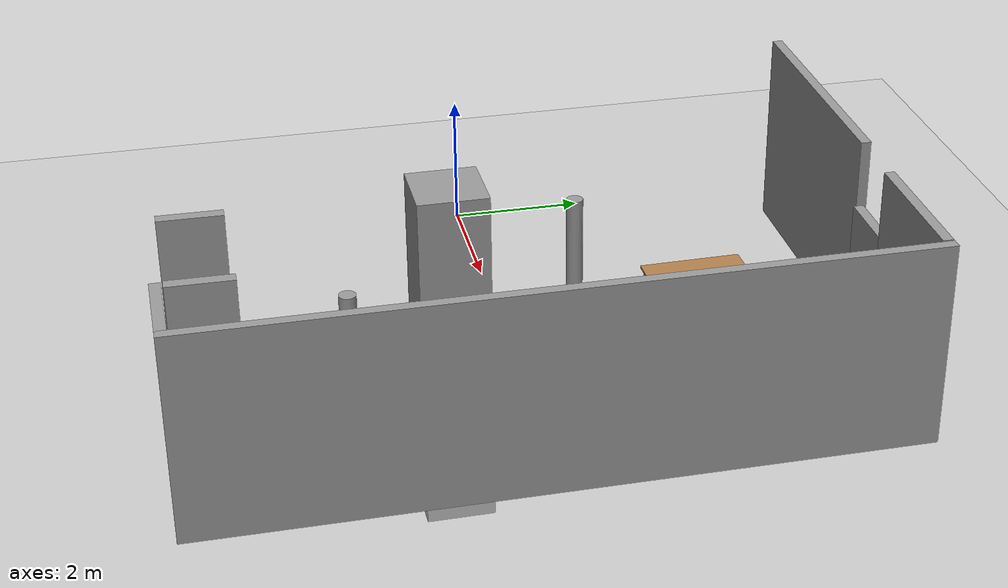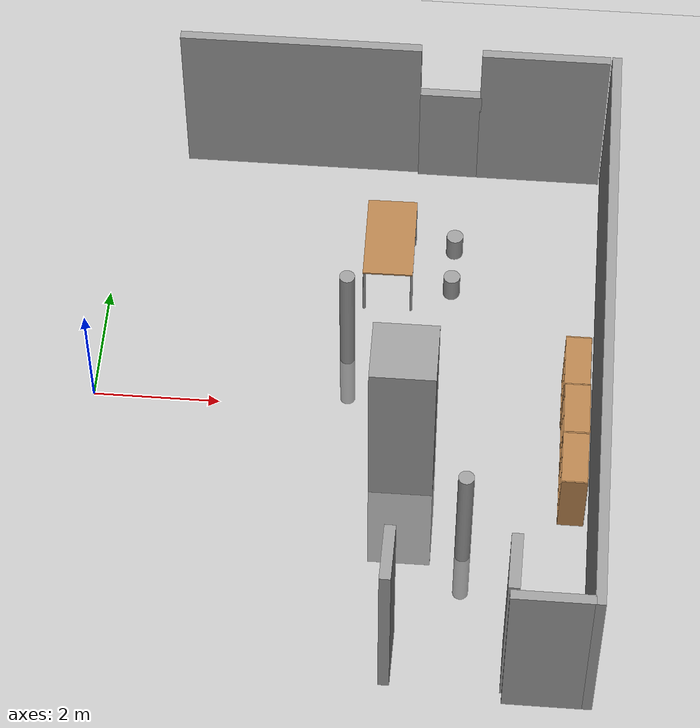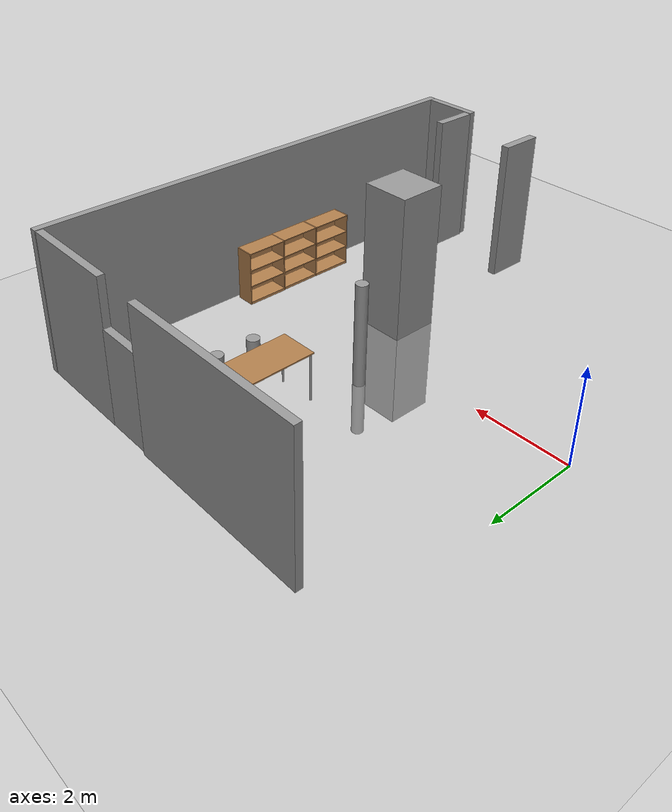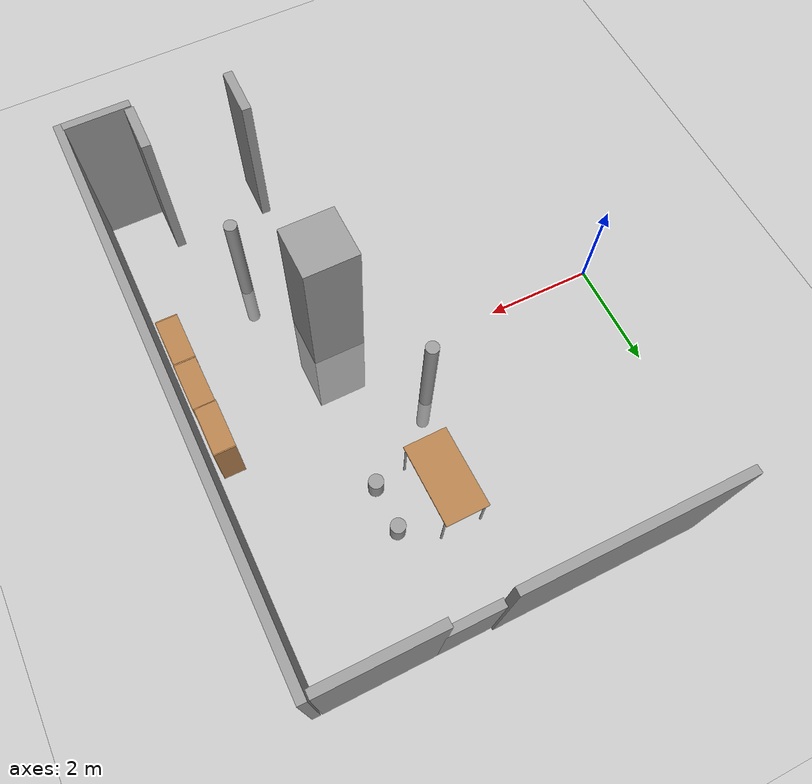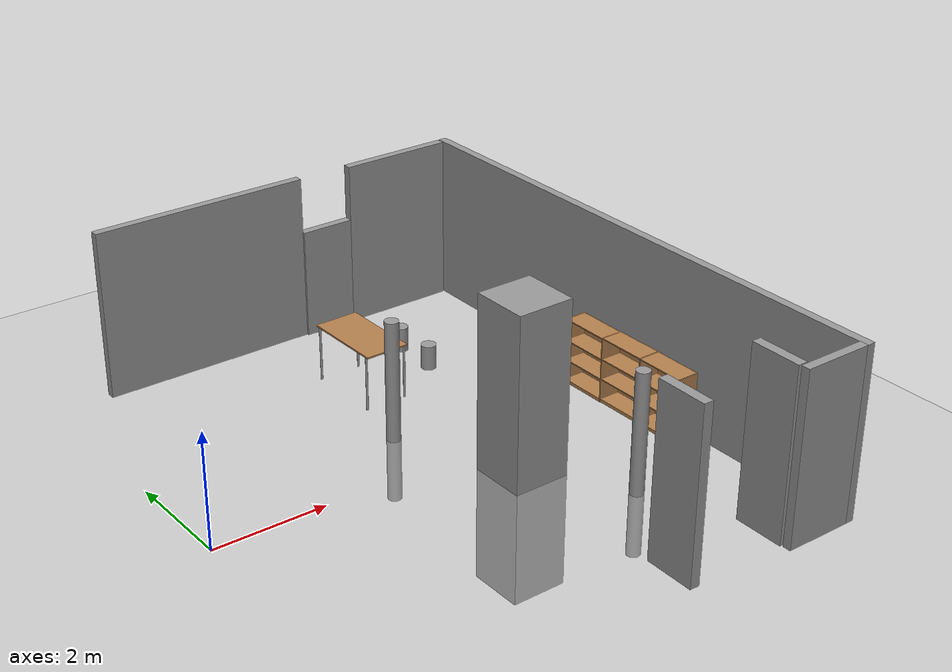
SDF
<sdf version="1.6">
 <world name="default">
  <model name="ground_plane">
   <static>1</static>
   <link name="link">
    <collision name="collision">
     <geometry><plane><normal>0 0 1</normal><size>100 100</size></plane></geometry>
     <surface><friction><ode><mu>100</mu><mu2>50</mu2></ode></friction></surface>
    </collision>
    <visual name="visual">
     <cast_shadows>0</cast_shadows>
     <geometry><plane><normal>0 0 1</normal><size>100 100</size></plane></geometry>
     <material>
      <script><uri>file://media/materials/scripts/gazebo.material</uri><name>Gazebo/Grey</name></script>
     </material>
    </visual>
   </link>
  </model>
  <model name="5">
   <link name="Door_2">
    <pose>5 -4.45535 0 0 -0 1.55702</pose>
    <visual name="Door_2_Visual">
     <pose>0 0 1.5 0 -0 0</pose>
     <geometry><box><size>0.9 0.17 3</size></box></geometry>
     <material>
      <script><uri>file://media/materials/scripts/gazebo.material</uri><name>Gazebo/Grey</name></script>
     </material>
    </visual>
    <collision name="Door_2_Collision">
     <pose>0 0 1.5 0 -0 0</pose>
     <geometry><box><size>0.9 0.17 3</size></box></geometry>
     <surface>
      <friction>
       <ode><mu>1</mu><mu2>1</mu2><fdir1>0 0 0</fdir1><slip1>0</slip1><slip2>0</slip2></ode>
       <torsional>
        <coefficient>1</coefficient>
        <patch_radius>0</patch_radius>
        <surface_radius>0</surface_radius>
        <use_patch_radius>1</use_patch_radius>
        <ode><slip>0</slip></ode>
       </torsional>
      </friction>
      <bounce><restitution_coefficient>0</restitution_coefficient><threshold>1e+06</threshold></bounce>
      <contact>
       <collide_without_contact>0</collide_without_contact>
       <collide_without_contact_bitmask>1</collide_without_contact_bitmask>
       <collide_bitmask>1</collide_bitmask>
       <ode>
        <soft_cfm>0</soft_cfm>
        <soft_erp>0.2</soft_erp>
        <kp>1e+13</kp>
        <kd>1</kd>
        <max_vel>0.01</max_vel>
        <min_depth>0</min_depth>
       </ode>
       <bullet>
        <split_impulse>1</split_impulse>
        <split_impulse_penetration_threshold>-0.01</split_impulse_penetration_threshold>
        <soft_cfm>0</soft_cfm>
        <soft_erp>0.2</soft_erp>
        <kp>1e+13</kp>
        <kd>1</kd>
       </bullet>
      </contact>
     </surface>
    </collision>
   </link>
   <link name="Door_3">
    <pose>6.8 -4.45535 0 0 0 -1.58271</pose>
    <visual name="Door_3_Visual">
     <pose>0 0 1.5 0 -0 0</pose>
     <geometry><box><size>0.9 0.17 3</size></box></geometry>
     <material>
      <script><uri>file://media/materials/scripts/gazebo.material</uri><name>Gazebo/Grey</name></script>
     </material>
    </visual>
    <collision name="Door_3_Collision">
     <pose>0 0 1.5 0 -0 0</pose>
     <geometry><box><size>0.9 0.17 3</size></box></geometry>
     <surface>
      <friction>
       <ode><mu>1</mu><mu2>1</mu2><fdir1>0 0 0</fdir1><slip1>0</slip1><slip2>0</slip2></ode>
       <torsional>
        <coefficient>1</coefficient>
        <patch_radius>0</patch_radius>
        <surface_radius>0</surface_radius>
        <use_patch_radius>1</use_patch_radius>
        <ode><slip>0</slip></ode>
       </torsional>
      </friction>
      <bounce><restitution_coefficient>0</restitution_coefficient><threshold>1e+06</threshold></bounce>
      <contact>
       <collide_without_contact>0</collide_without_contact>
       <collide_without_contact_bitmask>1</collide_without_contact_bitmask>
       <collide_bitmask>1</collide_bitmask>
       <ode>
        <soft_cfm>0</soft_cfm>
        <soft_erp>0.2</soft_erp>
        <kp>1e+13</kp>
        <kd>1</kd>
        <max_vel>0.01</max_vel>
        <min_depth>0</min_depth>
       </ode>
       <bullet>
        <split_impulse>1</split_impulse>
        <split_impulse_penetration_threshold>-0.01</split_impulse_penetration_threshold>
        <soft_cfm>0</soft_cfm>
        <soft_erp>0.2</soft_erp>
        <kp>1e+13</kp>
        <kd>1</kd>
       </bullet>
      </contact>
     </surface>
    </collision>
   </link>
   <link name="Wall_10">
    <pose>7.34 -5.00535 0 0 -0 0</pose>
    <visual name="Wall_10_Visual">
     <pose>0 0 1.5 0 -0 0</pose>
     <geometry><box><size>1.2 0.15 3</size></box></geometry>
     <material>
      <script><uri>file://media/materials/scripts/gazebo.material</uri><name>Gazebo/Grey</name></script>
      <ambient>1 1 1 1</ambient>
     </material>
     <meta><layer>0</layer></meta>
    </visual>
    <collision name="Wall_10_Collision">
     <pose>0 0 1.5 0 -0 0</pose>
     <geometry><box><size>1.2 0.15 3</size></box></geometry>
     <surface>
      <friction>
       <ode><mu>1</mu><mu2>1</mu2><fdir1>0 0 0</fdir1><slip1>0</slip1><slip2>0</slip2></ode>
       <torsional>
        <coefficient>1</coefficient>
        <patch_radius>0</patch_radius>
        <surface_radius>0</surface_radius>
        <use_patch_radius>1</use_patch_radius>
        <ode><slip>0</slip></ode>
       </torsional>
      </friction>
      <bounce><restitution_coefficient>0</restitution_coefficient><threshold>1e+06</threshold></bounce>
      <contact>
       <collide_without_contact>0</collide_without_contact>
       <collide_without_contact_bitmask>1</collide_without_contact_bitmask>
       <collide_bitmask>1</collide_bitmask>
       <ode>
        <soft_cfm>0</soft_cfm>
        <soft_erp>0.2</soft_erp>
        <kp>1e+13</kp>
        <kd>1</kd>
        <max_vel>0.01</max_vel>
        <min_depth>0</min_depth>
       </ode>
       <bullet>
        <split_impulse>1</split_impulse>
        <split_impulse_penetration_threshold>-0.01</split_impulse_penetration_threshold>
        <soft_cfm>0</soft_cfm>
        <soft_erp>0.2</soft_erp>
        <kp>1e+13</kp>
        <kd>1</kd>
       </bullet>
      </contact>
     </surface>
    </collision>
   </link>
   <link name="Wall_12">
    <pose>8 -0.005352 0 0 -0 1.5708</pose>
    <visual name="Wall_12_Visual">
     <pose>0 0 1.5 0 -0 0</pose>
     <geometry><box><size>10.15 0.15 3</size></box></geometry>
     <material>
      <script><uri>file://media/materials/scripts/gazebo.material</uri><name>Gazebo/Grey</name></script>
      <ambient>1 1 1 1</ambient>
     </material>
     <meta><layer>0</layer></meta>
    </visual>
    <collision name="Wall_12_Collision">
     <pose>0 0 1.5 0 -0 0</pose>
     <geometry><box><size>10.15 0.15 3</size></box></geometry>
     <surface>
      <friction>
       <ode><mu>1</mu><mu2>1</mu2><fdir1>0 0 0</fdir1><slip1>0</slip1><slip2>0</slip2></ode>
       <torsional>
        <coefficient>1</coefficient>
        <patch_radius>0</patch_radius>
        <surface_radius>0</surface_radius>
        <use_patch_radius>1</use_patch_radius>
        <ode><slip>0</slip></ode>
       </torsional>
      </friction>
      <bounce><restitution_coefficient>0</restitution_coefficient><threshold>1e+06</threshold></bounce>
      <contact>
       <collide_without_contact>0</collide_without_contact>
       <collide_without_contact_bitmask>1</collide_without_contact_bitmask>
       <collide_bitmask>1</collide_bitmask>
       <ode>
        <soft_cfm>0</soft_cfm>
        <soft_erp>0.2</soft_erp>
        <kp>1e+13</kp>
        <kd>1</kd>
        <max_vel>0.01</max_vel>
        <min_depth>0</min_depth>
       </ode>
       <bullet>
        <split_impulse>1</split_impulse>
        <split_impulse_penetration_threshold>-0.01</split_impulse_penetration_threshold>
        <soft_cfm>0</soft_cfm>
        <soft_erp>0.2</soft_erp>
        <kp>1e+13</kp>
        <kd>1</kd>
       </bullet>
      </contact>
     </surface>
    </collision>
   </link>
   <link name="Wall_22">
    <pose>2.93225 5.03398 0 0 -0 0.000503</pose>
    <inertial>
     <inertia><ixx>0</ixx><ixy>0</ixy><ixz>0</ixz><iyy>0</iyy><iyz>0</iyz><izz>0</izz></inertia>
     <mass>0</mass>
    </inertial>
    <visual name="Wall_22_Visual">
     <pose>0 0 1.5 0 -0 0</pose>
     <geometry><box><size>3.89162 0.15 3</size></box></geometry>
     <material>
      <script><uri>file://media/materials/scripts/gazebo.material</uri><name>Gazebo/Grey</name></script>
      <ambient>1 1 1 1</ambient>
     </material>
     <meta><layer>0</layer></meta>
    </visual>
    <collision name="Wall_22_Collision">
     <pose>0 0 1.5 0 -0 0</pose>
     <geometry><box><size>3.89162 0.15 3</size></box></geometry>
     <surface>
      <friction>
       <ode><mu>1</mu><mu2>1</mu2><fdir1>0 0 0</fdir1><slip1>0</slip1><slip2>0</slip2></ode>
       <torsional>
        <coefficient>1</coefficient>
        <patch_radius>0</patch_radius>
        <surface_radius>0</surface_radius>
        <use_patch_radius>1</use_patch_radius>
        <ode><slip>0</slip></ode>
       </torsional>
      </friction>
      <bounce><restitution_coefficient>0</restitution_coefficient><threshold>1e+06</threshold></bounce>
      <contact>
       <collide_without_contact>0</collide_without_contact>
       <collide_without_contact_bitmask>1</collide_without_contact_bitmask>
       <collide_bitmask>1</collide_bitmask>
       <ode>
        <soft_cfm>0</soft_cfm>
        <soft_erp>0.2</soft_erp>
        <kp>1e+13</kp>
        <kd>1</kd>
        <max_vel>0.01</max_vel>
        <min_depth>0</min_depth>
       </ode>
       <bullet>
        <split_impulse>1</split_impulse>
        <split_impulse_penetration_threshold>-0.01</split_impulse_penetration_threshold>
        <soft_cfm>0</soft_cfm>
        <soft_erp>0.2</soft_erp>
        <kp>1e+13</kp>
        <kd>1</kd>
       </bullet>
      </contact>
     </surface>
    </collision>
   </link>
   <link name="Wall_24">
    <pose>5.375 4.99465 0 0 -0 0</pose>
    <inertial>
     <inertia><ixx>0</ixx><ixy>0</ixy><ixz>0</ixz><iyy>0</iyy><iyz>0</iyz><izz>0</izz></inertia>
     <mass>0</mass>
    </inertial>
    <visual name="Wall_24_Visual_0">
     <pose>0 0 1 0 -0 0</pose>
     <geometry><box><size>1.00475 0.15 2</size></box></geometry>
     <material>
      <script><uri>file://media/materials/scripts/gazebo.material</uri><name>Gazebo/Grey</name></script>
      <ambient>1 1 1 1</ambient>
     </material>
     <meta><layer>0</layer></meta>
    </visual>
    <collision name="Wall_24_Collision_0">
     <pose>0 0 1 0 -0 0</pose>
     <geometry><box><size>1.00475 0.15 2</size></box></geometry>
     <surface>
      <friction>
       <ode><mu>1</mu><mu2>1</mu2><fdir1>0 0 0</fdir1><slip1>0</slip1><slip2>0</slip2></ode>
       <torsional>
        <coefficient>1</coefficient>
        <patch_radius>0</patch_radius>
        <surface_radius>0</surface_radius>
        <use_patch_radius>1</use_patch_radius>
        <ode><slip>0</slip></ode>
       </torsional>
      </friction>
      <bounce><restitution_coefficient>0</restitution_coefficient><threshold>1e+06</threshold></bounce>
      <contact>
       <collide_without_contact>0</collide_without_contact>
       <collide_without_contact_bitmask>1</collide_without_contact_bitmask>
       <collide_bitmask>1</collide_bitmask>
       <ode>
        <soft_cfm>0</soft_cfm>
        <soft_erp>0.2</soft_erp>
        <kp>1e+13</kp>
        <kd>1</kd>
        <max_vel>0.01</max_vel>
        <min_depth>0</min_depth>
       </ode>
       <bullet>
        <split_impulse>1</split_impulse>
        <split_impulse_penetration_threshold>-0.01</split_impulse_penetration_threshold>
        <soft_cfm>0</soft_cfm>
        <soft_erp>0.2</soft_erp>
        <kp>1e+13</kp>
        <kd>1</kd>
       </bullet>
      </contact>
     </surface>
    </collision>
   </link>
   <link name="Wall_26">
    <pose>6.875 4.99465 0 0 -0 0</pose>
    <inertial>
     <inertia><ixx>0</ixx><ixy>0</ixy><ixz>0</ixz><iyy>0</iyy><iyz>0</iyz><izz>0</izz></inertia>
     <mass>0</mass>
    </inertial>
    <visual name="Wall_26_Visual">
     <pose>0 0 1.5 0 -0 0</pose>
     <geometry><box><size>2.0482 0.15 3</size></box></geometry>
     <material>
      <script><uri>file://media/materials/scripts/gazebo.material</uri><name>Gazebo/Grey</name></script>
      <ambient>1 1 1 1</ambient>
     </material>
     <meta><layer>0</layer></meta>
    </visual>
    <collision name="Wall_26_Collision">
     <pose>0 0 1.5 0 -0 0</pose>
     <geometry><box><size>2.0482 0.15 3</size></box></geometry>
     <surface>
      <friction>
       <ode><mu>1</mu><mu2>1</mu2><fdir1>0 0 0</fdir1><slip1>0</slip1><slip2>0</slip2></ode>
       <torsional>
        <coefficient>1</coefficient>
        <patch_radius>0</patch_radius>
        <surface_radius>0</surface_radius>
        <use_patch_radius>1</use_patch_radius>
        <ode><slip>0</slip></ode>
       </torsional>
      </friction>
      <bounce><restitution_coefficient>0</restitution_coefficient><threshold>1e+06</threshold></bounce>
      <contact>
       <collide_without_contact>0</collide_without_contact>
       <collide_without_contact_bitmask>1</collide_without_contact_bitmask>
       <collide_bitmask>1</collide_bitmask>
       <ode>
        <soft_cfm>0</soft_cfm>
        <soft_erp>0.2</soft_erp>
        <kp>1e+13</kp>
        <kd>1</kd>
        <max_vel>0.01</max_vel>
        <min_depth>0</min_depth>
       </ode>
       <bullet>
        <split_impulse>1</split_impulse>
        <split_impulse_penetration_threshold>-0.01</split_impulse_penetration_threshold>
        <soft_cfm>0</soft_cfm>
        <soft_erp>0.2</soft_erp>
        <kp>1e+13</kp>
        <kd>1</kd>
       </bullet>
      </contact>
     </surface>
    </collision>
   </link>
   <link name="link_10">
    <inertial>
     <mass>0.189527</mass>
     <inertia>
      <ixx>0.168646</ixx>
      <ixy>0</ixy>
      <ixz>0</ixz>
      <iyy>0.168646</iyy>
      <iyz>0</iyz>
      <izz>0.00137469</izz>
     </inertia>
    </inertial>
    <pose>3.99203 1.00755 0.5 0 -0 1.57569</pose>
    <visual name="visual">
     <geometry><cylinder><radius>0.120443</radius><length>3.26104</length></cylinder></geometry>
     <material>
      <lighting>1</lighting>
      <script><uri>file://media/materials/scripts/gazebo.material</uri><name>Gazebo/Grey</name></script>
     </material>
    </visual>
    <collision name="collision">
     <geometry><cylinder><radius>0.120443</radius><length>3.26104</length></cylinder></geometry>
     <surface>
      <friction>
       <ode><mu>1</mu><mu2>1</mu2><fdir1>0 0 0</fdir1><slip1>0</slip1><slip2>0</slip2></ode>
       <torsional>
        <coefficient>1</coefficient>
        <patch_radius>0</patch_radius>
        <surface_radius>0</surface_radius>
        <use_patch_radius>1</use_patch_radius>
        <ode><slip>0</slip></ode>
       </torsional>
      </friction>
      <bounce><restitution_coefficient>0</restitution_coefficient><threshold>1e+06</threshold></bounce>
      <contact>
       <collide_without_contact>0</collide_without_contact>
       <collide_without_contact_bitmask>1</collide_without_contact_bitmask>
       <collide_bitmask>1</collide_bitmask>
       <ode>
        <soft_cfm>0</soft_cfm>
        <soft_erp>0.2</soft_erp>
        <kp>1e+13</kp>
        <kd>1</kd>
        <max_vel>0.01</max_vel>
        <min_depth>0</min_depth>
       </ode>
       <bullet>
        <split_impulse>1</split_impulse>
        <split_impulse_penetration_threshold>-0.01</split_impulse_penetration_threshold>
        <soft_cfm>0</soft_cfm>
        <soft_erp>0.2</soft_erp>
        <kp>1e+13</kp>
        <kd>1</kd>
       </bullet>
      </contact>
     </surface>
    </collision>
   </link>
   <link name="link_10_clone">
    <inertial>
     <mass>0.189527</mass>
     <inertia>
      <ixx>0.168646</ixx>
      <ixy>0</ixy>
      <ixz>0</ixz>
      <iyy>0.168646</iyy>
      <iyz>0</iyz>
      <izz>0.00137469</izz>
     </inertia>
    </inertial>
    <pose>6.03211 -2.55608 0.5 0 0 -3.13181</pose>
    <visual name="visual">
     <geometry><cylinder><radius>0.120443</radius><length>3.26104</length></cylinder></geometry>
     <material>
      <lighting>1</lighting>
      <script><uri>file://media/materials/scripts/gazebo.material</uri><name>Gazebo/Grey</name></script>
      <shader type="pixel"/>
     </material>
    </visual>
    <collision name="collision">
     <geometry><cylinder><radius>0.120443</radius><length>3.26104</length></cylinder></geometry>
     <surface>
      <friction>
       <ode><mu>1</mu><mu2>1</mu2><fdir1>0 0 0</fdir1><slip1>0</slip1><slip2>0</slip2></ode>
       <torsional>
        <coefficient>1</coefficient>
        <patch_radius>0</patch_radius>
        <surface_radius>0</surface_radius>
        <use_patch_radius>1</use_patch_radius>
        <ode><slip>0</slip></ode>
       </torsional>
      </friction>
      <bounce><restitution_coefficient>0</restitution_coefficient><threshold>1e+06</threshold></bounce>
      <contact>
       <collide_without_contact>0</collide_without_contact>
       <collide_without_contact_bitmask>1</collide_without_contact_bitmask>
       <collide_bitmask>1</collide_bitmask>
       <ode>
        <soft_cfm>0</soft_cfm>
        <soft_erp>0.2</soft_erp>
        <kp>1e+13</kp>
        <kd>1</kd>
        <max_vel>0.01</max_vel>
        <min_depth>0</min_depth>
       </ode>
       <bullet>
        <split_impulse>1</split_impulse>
        <split_impulse_penetration_threshold>-0.01</split_impulse_penetration_threshold>
        <soft_cfm>0</soft_cfm>
        <soft_erp>0.2</soft_erp>
        <kp>1e+13</kp>
        <kd>1</kd>
       </bullet>
      </contact>
     </surface>
    </collision>
   </link>
   <link name="link_13_clone_2">
    <inertial>
     <mass>0.0313183</mass>
     <inertia>
      <ixx>0.000638939</ixx>
      <ixy>0</ixy>
      <ixz>0</ixz>
      <iyy>0.000638939</iyy>
      <iyz>0</iyz>
      <izz>0.0002788</izz>
     </inertia>
    </inertial>
    <pose>5.58438 3.04761 0.5 0 0 -3.13181</pose>
    <visual name="visual">
     <geometry><cylinder><radius>0.133433</radius><length>0.437499</length></cylinder></geometry>
     <material>
      <lighting>1</lighting>
      <script><uri>file://media/materials/scripts/gazebo.material</uri><name>Gazebo/Grey</name></script>
      <shader type="pixel"/>
     </material>
    </visual>
    <collision name="collision">
     <geometry><cylinder><radius>0.133433</radius><length>0.437499</length></cylinder></geometry>
     <surface>
      <friction>
       <ode><mu>1</mu><mu2>1</mu2><fdir1>0 0 0</fdir1><slip1>0</slip1><slip2>0</slip2></ode>
       <torsional>
        <coefficient>1</coefficient>
        <patch_radius>0</patch_radius>
        <surface_radius>0</surface_radius>
        <use_patch_radius>1</use_patch_radius>
        <ode><slip>0</slip></ode>
       </torsional>
      </friction>
      <bounce><restitution_coefficient>0</restitution_coefficient><threshold>1e+06</threshold></bounce>
      <contact>
       <collide_without_contact>0</collide_without_contact>
       <collide_without_contact_bitmask>1</collide_without_contact_bitmask>
       <collide_bitmask>1</collide_bitmask>
       <ode>
        <soft_cfm>0</soft_cfm>
        <soft_erp>0.2</soft_erp>
        <kp>1e+13</kp>
        <kd>1</kd>
        <max_vel>0.01</max_vel>
        <min_depth>0</min_depth>
       </ode>
       <bullet>
        <split_impulse>1</split_impulse>
        <split_impulse_penetration_threshold>-0.01</split_impulse_penetration_threshold>
        <soft_cfm>0</soft_cfm>
        <soft_erp>0.2</soft_erp>
        <kp>1e+13</kp>
        <kd>1</kd>
       </bullet>
      </contact>
     </surface>
    </collision>
   </link>
   <link name="link_13_clone_3">
    <inertial>
     <mass>0.0313183</mass>
     <inertia>
      <ixx>0.000638939</ixx>
      <ixy>0</ixy>
      <ixz>0</ixz>
      <iyy>0.000638939</iyy>
      <iyz>0</iyz>
      <izz>0.0002788</izz>
     </inertia>
    </inertial>
    <pose>5.58067 2.21897 0.5 0 0 -3.13181</pose>
    <visual name="visual">
     <geometry><cylinder><radius>0.133433</radius><length>0.437499</length></cylinder></geometry>
     <material>
      <lighting>1</lighting>
      <script><uri>file://media/materials/scripts/gazebo.material</uri><name>Gazebo/Grey</name></script>
      <shader type="pixel"/>
     </material>
    </visual>
    <collision name="collision">
     <geometry><cylinder><radius>0.133433</radius><length>0.437499</length></cylinder></geometry>
     <surface>
      <friction>
       <ode><mu>1</mu><mu2>1</mu2><fdir1>0 0 0</fdir1><slip1>0</slip1><slip2>0</slip2></ode>
       <torsional>
        <coefficient>1</coefficient>
        <patch_radius>0</patch_radius>
        <surface_radius>0</surface_radius>
        <use_patch_radius>1</use_patch_radius>
        <ode><slip>0</slip></ode>
       </torsional>
      </friction>
      <bounce><restitution_coefficient>0</restitution_coefficient><threshold>1e+06</threshold></bounce>
      <contact>
       <collide_without_contact>0</collide_without_contact>
       <collide_without_contact_bitmask>1</collide_without_contact_bitmask>
       <collide_bitmask>1</collide_bitmask>
       <ode>
        <soft_cfm>0</soft_cfm>
        <soft_erp>0.2</soft_erp>
        <kp>1e+13</kp>
        <kd>1</kd>
        <max_vel>0.01</max_vel>
        <min_depth>0</min_depth>
       </ode>
       <bullet>
        <split_impulse>1</split_impulse>
        <split_impulse_penetration_threshold>-0.01</split_impulse_penetration_threshold>
        <soft_cfm>0</soft_cfm>
        <soft_erp>0.2</soft_erp>
        <kp>1e+13</kp>
        <kd>1</kd>
       </bullet>
      </contact>
     </surface>
    </collision>
   </link>
   <link name="link_9">
    <inertial>
     <mass>5.11553</mass>
     <inertia><ixx>11.5819</ixx><ixy>0</ixy><ixz>0</ixz><iyy>11.5819</iyy><iyz>0</iyz><izz>0.852589</izz></inertia>
    </inertial>
    <pose>5.00772 -1.02062 0.5 0 -0 1.57569</pose>
    <visual name="visual">
     <geometry><box><size>1 1 5.11554</size></box></geometry>
     <material>
      <lighting>1</lighting>
      <script><uri>file://media/materials/scripts/gazebo.material</uri><name>Gazebo/Grey</name></script>
     </material>
    </visual>
    <collision name="collision">
     <geometry><box><size>1 1 5.11554</size></box></geometry>
     <surface>
      <friction>
       <ode><mu>1</mu><mu2>1</mu2><fdir1>0 0 0</fdir1><slip1>0</slip1><slip2>0</slip2></ode>
       <torsional>
        <coefficient>1</coefficient>
        <patch_radius>0</patch_radius>
        <surface_radius>0</surface_radius>
        <use_patch_radius>1</use_patch_radius>
        <ode><slip>0</slip></ode>
       </torsional>
      </friction>
      <bounce><restitution_coefficient>0</restitution_coefficient><threshold>1e+06</threshold></bounce>
      <contact>
       <collide_without_contact>0</collide_without_contact>
       <collide_without_contact_bitmask>1</collide_without_contact_bitmask>
       <collide_bitmask>1</collide_bitmask>
       <ode>
        <soft_cfm>0</soft_cfm>
        <soft_erp>0.2</soft_erp>
        <kp>1e+13</kp>
        <kd>1</kd>
        <max_vel>0.01</max_vel>
        <min_depth>0</min_depth>
       </ode>
       <bullet>
        <split_impulse>1</split_impulse>
        <split_impulse_penetration_threshold>-0.01</split_impulse_penetration_threshold>
        <soft_cfm>0</soft_cfm>
        <soft_erp>0.2</soft_erp>
        <kp>1e+13</kp>
        <kd>1</kd>
       </bullet>
      </contact>
     </surface>
    </collision>
   </link>
   <model name="bookshelf">
    <static>1</static>
    <link name="link">
     <inertial><mass>1</mass></inertial>
     <collision name="back">
      <pose>0 0.005 0.6 0 -0 0</pose>
      <geometry><box><size>0.9 0.01 1.2</size></box></geometry>
     </collision>
     <visual name="visual1">
      <pose>0 0.005 0.6 0 -0 0</pose>
      <geometry><box><size>0.9 0.01 1.2</size></box></geometry>
      <material>
       <script><uri>file://media/materials/scripts/gazebo.material</uri><name>Gazebo/Wood</name></script>
      </material>
     </visual>
     <collision name="left_side">
      <pose>0.45 -0.195 0.6 0 -0 0</pose>
      <geometry><box><size>0.02 0.4 1.2</size></box></geometry>
     </collision>
     <visual name="visual2">
      <pose>0.45 -0.195 0.6 0 -0 0</pose>
      <geometry><box><size>0.02 0.4 1.2</size></box></geometry>
      <material>
       <script><uri>file://media/materials/scripts/gazebo.material</uri><name>Gazebo/Wood</name></script>
      </material>
     </visual>
     <collision name="right_side">
      <pose>-0.45 -0.195 0.6 0 -0 0</pose>
      <geometry><box><size>0.02 0.4 1.2</size></box></geometry>
     </collision>
     <visual name="visual3">
      <pose>-0.45 -0.195 0.6 0 -0 0</pose>
      <geometry><box><size>0.02 0.4 1.2</size></box></geometry>
      <material>
       <script><uri>file://media/materials/scripts/gazebo.material</uri><name>Gazebo/Wood</name></script>
      </material>
     </visual>
     <collision name="bottom">
      <pose>0 -0.195 0.03 0 -0 0</pose>
      <geometry><box><size>0.88 0.4 0.06</size></box></geometry>
     </collision>
     <visual name="visual4">
      <pose>0 -0.195 0.03 0 -0 0</pose>
      <geometry><box><size>0.88 0.4 0.06</size></box></geometry>
      <material>
       <script><uri>file://media/materials/scripts/gazebo.material</uri><name>Gazebo/Wood</name></script>
      </material>
     </visual>
     <collision name="top">
      <pose>0 -0.195 1.19 0 -0 0</pose>
      <geometry><box><size>0.88 0.4 0.02</size></box></geometry>
     </collision>
     <visual name="visual5">
      <pose>0 -0.195 1.19 0 -0 0</pose>
      <geometry><box><size>0.88 0.4 0.02</size></box></geometry>
      <material>
       <script><uri>file://media/materials/scripts/gazebo.material</uri><name>Gazebo/Wood</name></script>
      </material>
     </visual>
     <collision name="low_shelf">
      <pose>0 -0.195 0.43 0 -0 0</pose>
      <geometry><box><size>0.88 0.4 0.02</size></box></geometry>
     </collision>
     <visual name="visual6">
      <pose>0 -0.195 0.43 0 -0 0</pose>
      <geometry><box><size>0.88 0.4 0.02</size></box></geometry>
      <material>
       <script><uri>file://media/materials/scripts/gazebo.material</uri><name>Gazebo/Wood</name></script>
      </material>
     </visual>
     <collision name="high_shelf">
      <pose>0 -0.195 0.8 0 -0 0</pose>
      <geometry><box><size>0.88 0.4 0.02</size></box></geometry>
     </collision>
     <visual name="visual7">
      <pose>0 -0.195 0.8 0 -0 0</pose>
      <geometry><box><size>0.88 0.4 0.02</size></box></geometry>
      <material>
       <script><uri>file://media/materials/scripts/gazebo.material</uri><name>Gazebo/Wood</name></script>
      </material>
     </visual>
    </link>
    <pose>7.83106 0.361944 0 0 0 -1.57123</pose>
   </model>
   <model name="bookshelf_0">
    <static>1</static>
    <link name="link">
     <inertial><mass>1</mass></inertial>
     <collision name="back">
      <pose>0 0.005 0.6 0 -0 0</pose>
      <geometry><box><size>0.9 0.01 1.2</size></box></geometry>
     </collision>
     <visual name="visual1">
      <pose>0 0.005 0.6 0 -0 0</pose>
      <geometry><box><size>0.9 0.01 1.2</size></box></geometry>
      <material>
       <script><uri>file://media/materials/scripts/gazebo.material</uri><name>Gazebo/Wood</name></script>
      </material>
     </visual>
     <collision name="left_side">
      <pose>0.45 -0.195 0.6 0 -0 0</pose>
      <geometry><box><size>0.02 0.4 1.2</size></box></geometry>
     </collision>
     <visual name="visual2">
      <pose>0.45 -0.195 0.6 0 -0 0</pose>
      <geometry><box><size>0.02 0.4 1.2</size></box></geometry>
      <material>
       <script><uri>file://media/materials/scripts/gazebo.material</uri><name>Gazebo/Wood</name></script>
      </material>
     </visual>
     <collision name="right_side">
      <pose>-0.45 -0.195 0.6 0 -0 0</pose>
      <geometry><box><size>0.02 0.4 1.2</size></box></geometry>
     </collision>
     <visual name="visual3">
      <pose>-0.45 -0.195 0.6 0 -0 0</pose>
      <geometry><box><size>0.02 0.4 1.2</size></box></geometry>
      <material>
       <script><uri>file://media/materials/scripts/gazebo.material</uri><name>Gazebo/Wood</name></script>
      </material>
     </visual>
     <collision name="bottom">
      <pose>0 -0.195 0.03 0 -0 0</pose>
      <geometry><box><size>0.88 0.4 0.06</size></box></geometry>
     </collision>
     <visual name="visual4">
      <pose>0 -0.195 0.03 0 -0 0</pose>
      <geometry><box><size>0.88 0.4 0.06</size></box></geometry>
      <material>
       <script><uri>file://media/materials/scripts/gazebo.material</uri><name>Gazebo/Wood</name></script>
      </material>
     </visual>
     <collision name="top">
      <pose>0 -0.195 1.19 0 -0 0</pose>
      <geometry><box><size>0.88 0.4 0.02</size></box></geometry>
     </collision>
     <visual name="visual5">
      <pose>0 -0.195 1.19 0 -0 0</pose>
      <geometry><box><size>0.88 0.4 0.02</size></box></geometry>
      <material>
       <script><uri>file://media/materials/scripts/gazebo.material</uri><name>Gazebo/Wood</name></script>
      </material>
     </visual>
     <collision name="low_shelf">
      <pose>0 -0.195 0.43 0 -0 0</pose>
      <geometry><box><size>0.88 0.4 0.02</size></box></geometry>
     </collision>
     <visual name="visual6">
      <pose>0 -0.195 0.43 0 -0 0</pose>
      <geometry><box><size>0.88 0.4 0.02</size></box></geometry>
      <material>
       <script><uri>file://media/materials/scripts/gazebo.material</uri><name>Gazebo/Wood</name></script>
      </material>
     </visual>
     <collision name="high_shelf">
      <pose>0 -0.195 0.8 0 -0 0</pose>
      <geometry><box><size>0.88 0.4 0.02</size></box></geometry>
     </collision>
     <visual name="visual7">
      <pose>0 -0.195 0.8 0 -0 0</pose>
      <geometry><box><size>0.88 0.4 0.02</size></box></geometry>
      <material>
       <script><uri>file://media/materials/scripts/gazebo.material</uri><name>Gazebo/Wood</name></script>
      </material>
     </visual>
    </link>
    <pose>7.84636 -0.532752 0 0 0 -1.5632</pose>
   </model>
   <model name="bookshelf_1">
    <static>1</static>
    <link name="link">
     <inertial><mass>1</mass></inertial>
     <collision name="back">
      <pose>0 0.005 0.6 0 -0 0</pose>
      <geometry><box><size>0.9 0.01 1.2</size></box></geometry>
     </collision>
     <visual name="visual1">
      <pose>0 0.005 0.6 0 -0 0</pose>
      <geometry><box><size>0.9 0.01 1.2</size></box></geometry>
      <material>
       <script><uri>file://media/materials/scripts/gazebo.material</uri><name>Gazebo/Wood</name></script>
      </material>
     </visual>
     <collision name="left_side">
      <pose>0.45 -0.195 0.6 0 -0 0</pose>
      <geometry><box><size>0.02 0.4 1.2</size></box></geometry>
     </collision>
     <visual name="visual2">
      <pose>0.45 -0.195 0.6 0 -0 0</pose>
      <geometry><box><size>0.02 0.4 1.2</size></box></geometry>
      <material>
       <script><uri>file://media/materials/scripts/gazebo.material</uri><name>Gazebo/Wood</name></script>
      </material>
     </visual>
     <collision name="right_side">
      <pose>-0.45 -0.195 0.6 0 -0 0</pose>
      <geometry><box><size>0.02 0.4 1.2</size></box></geometry>
     </collision>
     <visual name="visual3">
      <pose>-0.45 -0.195 0.6 0 -0 0</pose>
      <geometry><box><size>0.02 0.4 1.2</size></box></geometry>
      <material>
       <script><uri>file://media/materials/scripts/gazebo.material</uri><name>Gazebo/Wood</name></script>
      </material>
     </visual>
     <collision name="bottom">
      <pose>0 -0.195 0.03 0 -0 0</pose>
      <geometry><box><size>0.88 0.4 0.06</size></box></geometry>
     </collision>
     <visual name="visual4">
      <pose>0 -0.195 0.03 0 -0 0</pose>
      <geometry><box><size>0.88 0.4 0.06</size></box></geometry>
      <material>
       <script><uri>file://media/materials/scripts/gazebo.material</uri><name>Gazebo/Wood</name></script>
      </material>
     </visual>
     <collision name="top">
      <pose>0 -0.195 1.19 0 -0 0</pose>
      <geometry><box><size>0.88 0.4 0.02</size></box></geometry>
     </collision>
     <visual name="visual5">
      <pose>0 -0.195 1.19 0 -0 0</pose>
      <geometry><box><size>0.88 0.4 0.02</size></box></geometry>
      <material>
       <script><uri>file://media/materials/scripts/gazebo.material</uri><name>Gazebo/Wood</name></script>
      </material>
     </visual>
     <collision name="low_shelf">
      <pose>0 -0.195 0.43 0 -0 0</pose>
      <geometry><box><size>0.88 0.4 0.02</size></box></geometry>
     </collision>
     <visual name="visual6">
      <pose>0 -0.195 0.43 0 -0 0</pose>
      <geometry><box><size>0.88 0.4 0.02</size></box></geometry>
      <material>
       <script><uri>file://media/materials/scripts/gazebo.material</uri><name>Gazebo/Wood</name></script>
      </material>
     </visual>
     <collision name="high_shelf">
      <pose>0 -0.195 0.8 0 -0 0</pose>
      <geometry><box><size>0.88 0.4 0.02</size></box></geometry>
     </collision>
     <visual name="visual7">
      <pose>0 -0.195 0.8 0 -0 0</pose>
      <geometry><box><size>0.88 0.4 0.02</size></box></geometry>
      <material>
       <script><uri>file://media/materials/scripts/gazebo.material</uri><name>Gazebo/Wood</name></script>
      </material>
     </visual>
    </link>
    <pose>7.8463 -1.44377 0 0 0 -1.57013</pose>
   </model>
   <model name="table_1">
    <static>1</static>
    <link name="link">
     <collision name="surface">
      <pose>0 0 1 0 -0 0</pose>
      <geometry><box><size>1.5 0.8 0.03</size></box></geometry>
      <surface><friction><ode><mu>0.6</mu><mu2>0.6</mu2></ode></friction></surface>
     </collision>
     <visual name="visual1">
      <pose>0 0 1 0 -0 0</pose>
      <geometry><box><size>1.5 0.8 0.03</size></box></geometry>
      <material>
       <script><uri>file://media/materials/scripts/gazebo.material</uri><name>Gazebo/Wood</name></script>
      </material>
     </visual>
     <collision name="front_left_leg">
      <pose>0.68 0.38 0.5 0 -0 0</pose>
      <geometry><cylinder><radius>0.02</radius><length>1</length></cylinder></geometry>
     </collision>
     <visual name="front_left_leg">
      <pose>0.68 0.38 0.5 0 -0 0</pose>
      <geometry><cylinder><radius>0.02</radius><length>1</length></cylinder></geometry>
      <material>
       <script><uri>file://media/materials/scripts/gazebo.material</uri><name>Gazebo/Grey</name></script>
      </material>
     </visual>
     <collision name="front_right_leg">
      <pose>0.68 -0.38 0.5 0 -0 0</pose>
      <geometry><cylinder><radius>0.02</radius><length>1</length></cylinder></geometry>
     </collision>
     <visual name="front_right_leg">
      <pose>0.68 -0.38 0.5 0 -0 0</pose>
      <geometry><cylinder><radius>0.02</radius><length>1</length></cylinder></geometry>
      <material>
       <script><uri>file://media/materials/scripts/gazebo.material</uri><name>Gazebo/Grey</name></script>
      </material>
     </visual>
     <collision name="back_right_leg">
      <pose>-0.68 -0.38 0.5 0 -0 0</pose>
      <geometry><cylinder><radius>0.02</radius><length>1</length></cylinder></geometry>
     </collision>
     <visual name="back_right_leg">
      <pose>-0.68 -0.38 0.5 0 -0 0</pose>
      <geometry><cylinder><radius>0.02</radius><length>1</length></cylinder></geometry>
      <material>
       <script><uri>file://media/materials/scripts/gazebo.material</uri><name>Gazebo/Grey</name></script>
      </material>
     </visual>
     <collision name="back_left_leg">
      <pose>-0.68 0.38 0.5 0 -0 0</pose>
      <geometry><cylinder><radius>0.02</radius><length>1</length></cylinder></geometry>
     </collision>
     <visual name="back_left_leg">
      <pose>-0.68 0.38 0.5 0 -0 0</pose>
      <geometry><cylinder><radius>0.02</radius><length>1</length></cylinder></geometry>
      <material>
       <script><uri>file://media/materials/scripts/gazebo.material</uri><name>Gazebo/Grey</name></script>
      </material>
     </visual>
    </link>
    <pose>4.55248 2.71482 0 0 -0 1.58299</pose>
   </model>
   <static>1</static>
   <pose>-0.036086 0.007651 0 0 -0 0</pose>
  </model>
 </world>
</sdf>
